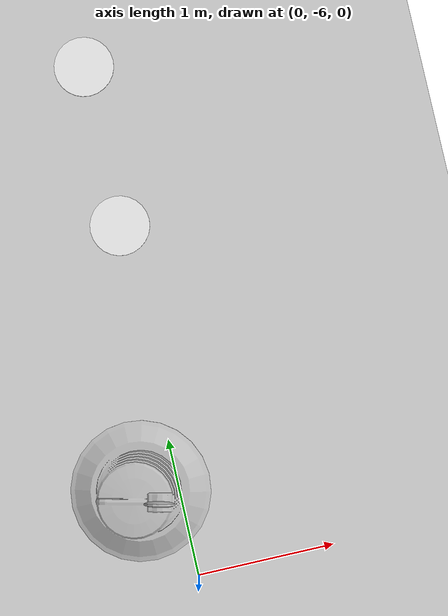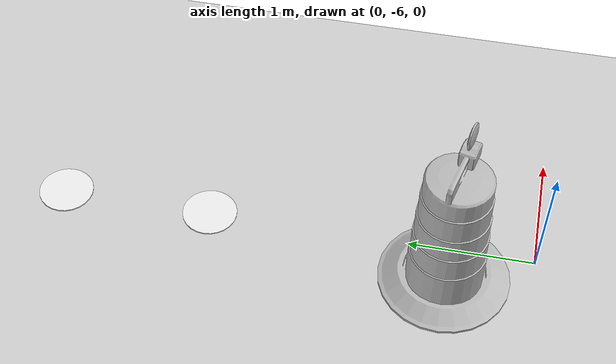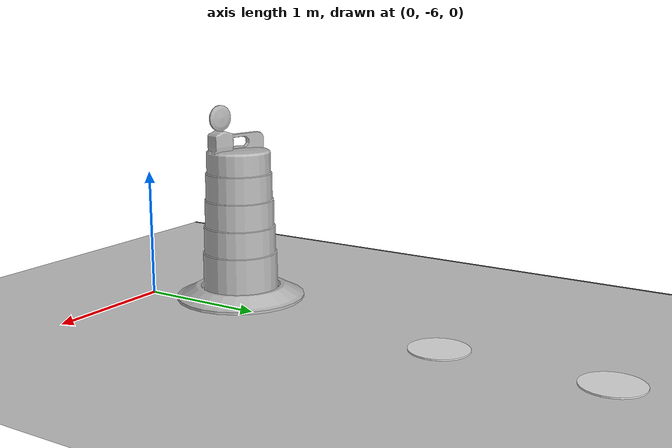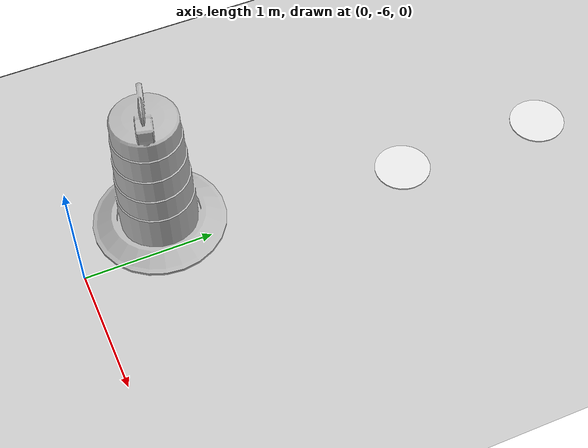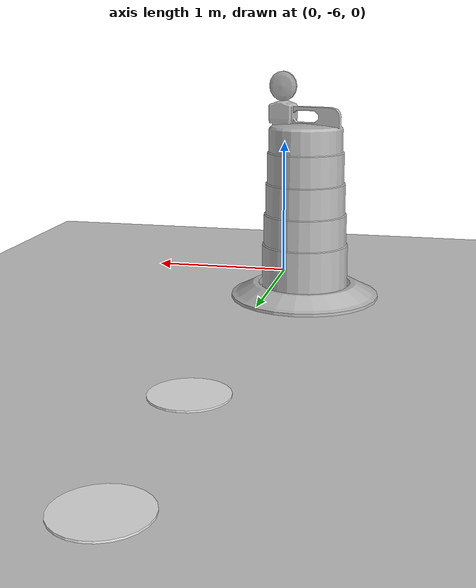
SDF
<sdf version="1.7">
 <world name="default">
  <model name="ground_plane">
   <static>1</static>
   <link name="link">
    <collision name="collision">
     <geometry><plane><normal>0 0 1</normal><size>100 100</size></plane></geometry>
     <surface><friction><ode><mu>100</mu><mu2>50</mu2></ode></friction></surface>
    </collision>
    <visual name="visual">
     <cast_shadows>0</cast_shadows>
     <geometry><plane><normal>0 0 1</normal><size>100 100</size></plane></geometry>
     <material>
      <script><uri>file://media/materials/scripts/gazebo.material</uri><name>Gazebo/Grey</name></script>
      <ambient>0.55 0.55 0.55 1</ambient>
      <diffuse>0.55 0.55 0.55 1</diffuse>
      <specular>0.08 0.08 0.08 1</specular>
      <emissive>0 0 0 1</emissive>
     </material>
    </visual>
   </link>
  </model>
  <model name="Construction Barrel">
   <link name="link">
    <inertial>
     <pose>0 0 0.4 0 -0 0</pose>
     <mass>500</mass>
     <inertia><ixx>51.2096</ixx><iyy>51.2096</iyy><izz>25</izz><ixy>0</ixy><ixz>0</ixz><iyz>0</iyz></inertia>
    </inertial>
    <collision name="collision">
     <pose>0 0 0.32 0 0 0</pose>
     <geometry><cylinder><radius>0.16</radius><length>0.64</length></cylinder></geometry>
    </collision>
    <visual name="visual">
     <geometry><mesh><uri>model://construction_barrel/meshes/construction_barrel.dae</uri></mesh></geometry>
    </visual>
   </link>
   <pose>-0.274787 -5.3139 0.00999 1e-06 -0 -0.237848</pose>
  </model>
  <model name="asphalt_plane">
   <static>1</static>
   <link name="link">
    <collision name="collision"><geometry><box><size>20 20 0.1</size></box></geometry></collision>
    <visual name="visual">
     <cast_shadows>0</cast_shadows>
     <geometry><box><size>20 20 0.1</size></box></geometry>
     <material>
      <script>
       <uri>model://asphalt_plane/materials/scripts</uri>
       <uri>model://asphalt_plane/materials/textures</uri>
       <name>vrc/asphalt</name>
      </script>
      <ambient>0.09 0.09 0.085 1</ambient>
      <diffuse>0.09 0.09 0.085 1</diffuse>
      <specular>0.08 0.08 0.08 1</specular>
      <emissive>0 0 0 1</emissive>
     </material>
    </visual>
   </link>
   <pose>-12.6134 -1.31009 -0.045514 0 -0 0</pose>
  </model>
  <model name="crew_start_marker">
   <static>1</static>
   <link name="link">
    <visual name="disc">
     <geometry><cylinder><radius>0.22</radius><length>0.01</length></cylinder></geometry>
     <material>
      <script><uri>file://media/materials/scripts/gazebo.material</uri><name>Gazebo/White</name></script>
      <ambient>0.92 0.82 0.78 1</ambient>
      <diffuse>0.92 0.82 0.78 1</diffuse>
      <specular>0.08 0.08 0.08 1</specular>
      <emissive>0 0 0 1</emissive>
     </material>
    </visual>
   </link>
   <pose>0.0 -2.2 0.012 0 0 0</pose>
  </model>
  <model name="impostor_start_marker">
   <static>1</static>
   <link name="link">
    <visual name="disc">
     <geometry><cylinder><radius>0.22</radius><length>0.01</length></cylinder></geometry>
     <material>
      <script><uri>file://media/materials/scripts/gazebo.material</uri><name>Gazebo/White</name></script>
      <ambient>0.92 0.55 0.55 1</ambient>
      <diffuse>0.92 0.55 0.55 1</diffuse>
      <specular>0.08 0.08 0.08 1</specular>
      <emissive>0 0 0 1</emissive>
     </material>
    </visual>
   </link>
   <pose>0.0 -3.4 0.012 0 0 0</pose>
  </model>
 </world>
</sdf>
